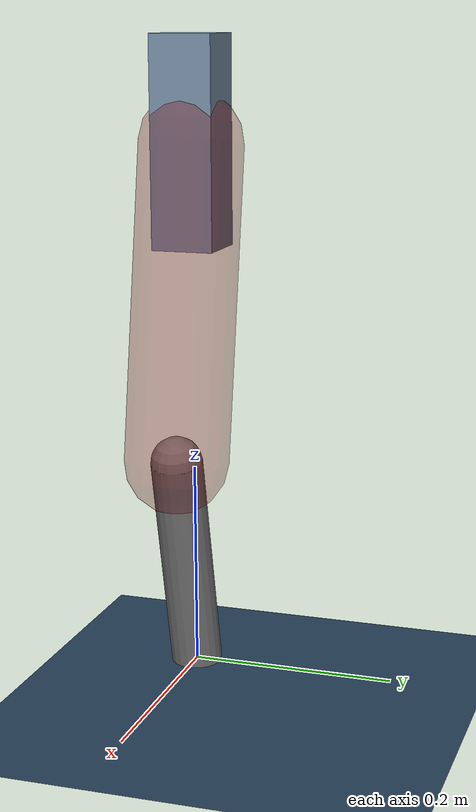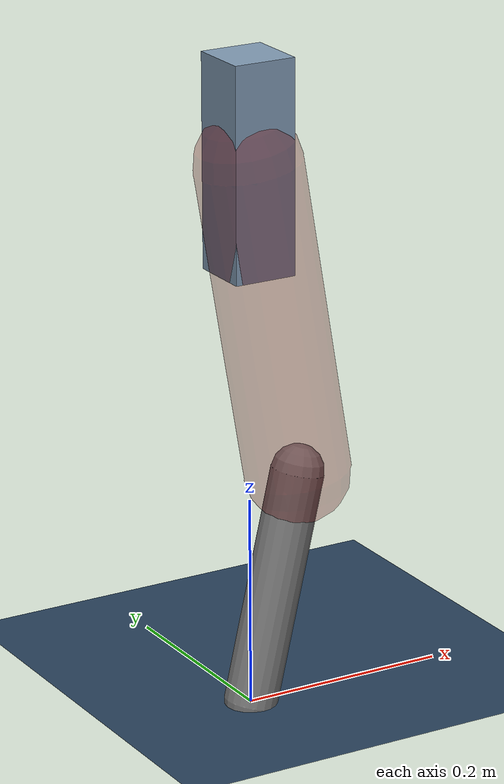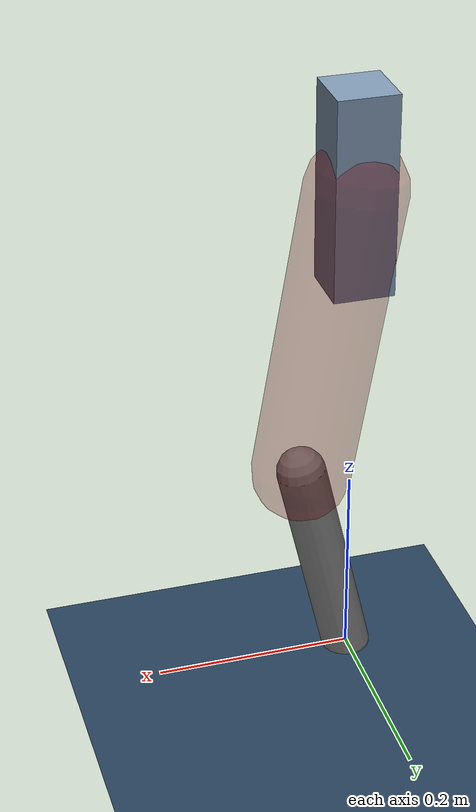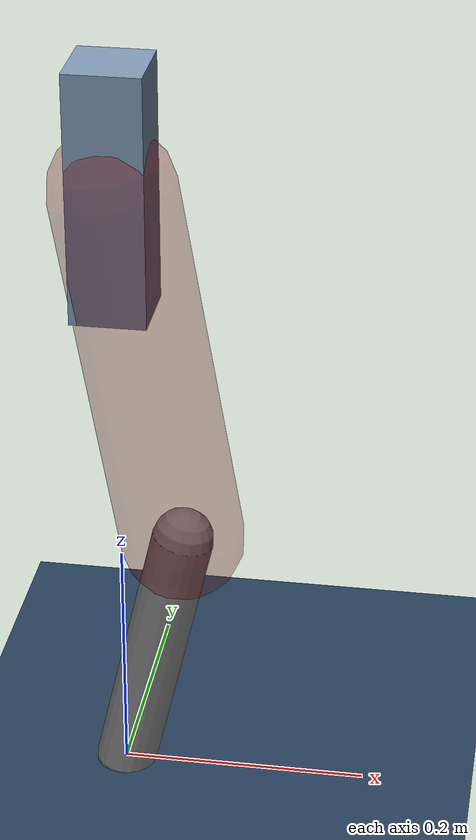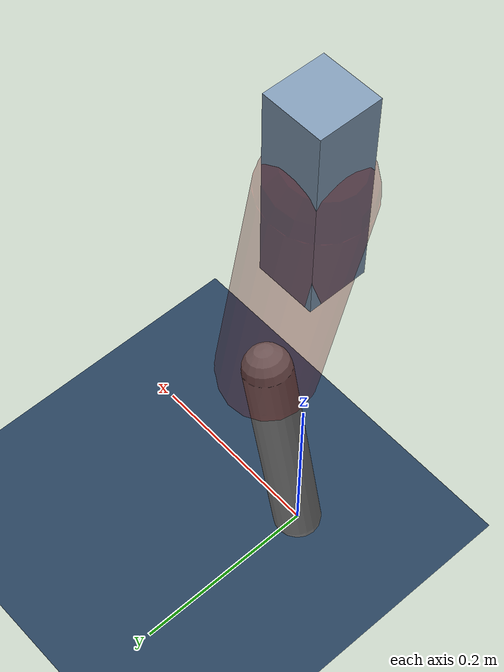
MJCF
<mujoco model="Hopper2D">
	<compiler inertiafromgeom="true" angle="radian" />
	<option timestep="0.001" integrator="implicit" cone="elliptic" solver="Newton" tolerance="1e-10" />

	<default>
		<geom contype="1" conaffinity="1" condim="3" friction="2 0.005 0.0001" solref="0.005 1" />
		<joint limited="true" damping="0.1" />
	</default>

	<asset>
		<texture name="skybox" type="skybox" builtin="gradient" rgb1=".4 .6 .8" rgb2="0 0 0" width="800" height="800" />
		<texture name="grid" type="2d" builtin="checker" rgb1=".1 .2 .3" rgb2=".2 .3 .4" width="300" height="300" mark="edge" markrgb=".2 .3 .4" />
		<material name="ground" texture="grid" texrepeat="1 1" texuniform="true" reflectance="0.1" />
		<material name="leg" rgba="0.5 0.6 0.7 1" />
	</asset>

	<worldbody>

		<geom name="floor" type="plane" size="5 5 0.25" material="ground" />

		<light directional="false" diffuse="0.8 0.8 0.8" specular="0.3 0.3 0.3" pos="0 0 2" dir="0 0 -1" />
		<light mode="targetbodycom" target="base" directional="false" diffuse="0.8 0.8 0.8" specular="0.3 0.3 0.3" pos="0 0 2" dir="0 0 -1" />

		<camera name="fixed" pos="0 -2 1" xyaxes="1 0 0 0 0 1" />
		<camera name="tracking" mode="trackcom" pos="0 -3 1" />

		<body name="root" pos="0 0 0.518231366788141">
			<joint name="slide_x" type="slide" axis="1 0 0" range="-100 100" />
			<joint name="slide_z" type="slide" axis="0 0 1" range="0 10" />

			<body name="base" pos="0 0 0">
				<geom name="torso" type="box" size="0.03 0.03 0.1" mass="2.306" material="leg" />

				<body name="link1" pos="0 0 0" euler="0 1.4031485136218806 0">
					<joint type="hinge" axis="0 -1 0" pos="0 0 0" name="hinge1" limited="true" range="-3.14 3.14" stiffness="0" damping="0.1" />
					<geom name="thigh" type="capsule" fromto="0 0 0 0.30304829981679726 0 0" size="0.05" rgba="0.5 0 0 0.3" mass="0.9970304095053526" />

					<body name="link2" pos="0.30304829981679726 0 0" euler="0 0.3941421278607122 0">
						<joint type="hinge" axis="0 -1 0" pos="0 0 0" name="hinge2" limited="true" range="-3.14 3.14" stiffness="0" damping="0.1" />
						<geom name="shank" type="capsule" fromto="0 0 0 0.22518306697134371 0 0" size="0.025" mass="0.42196476027420937" />

					</body>
				</body>
			</body>
		</body>
	</worldbody>

	<actuator>
		<motor name="torque1" joint="hinge1" ctrlrange="-76.0735784167661 76.0735784167661" ctrllimited="true" gear="1" />
		<motor name="torque2" joint="hinge2" ctrlrange="-103.57784383137698 103.57784383137698" ctrllimited="true" gear="1" />
	</actuator>
</mujoco>
